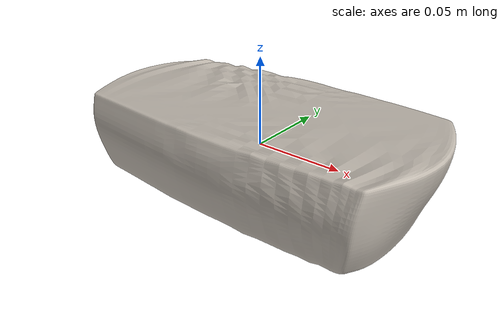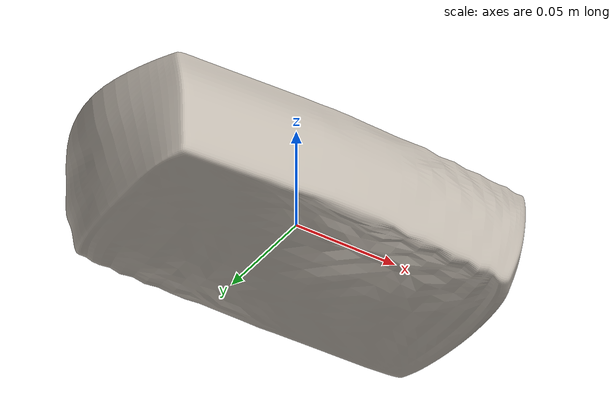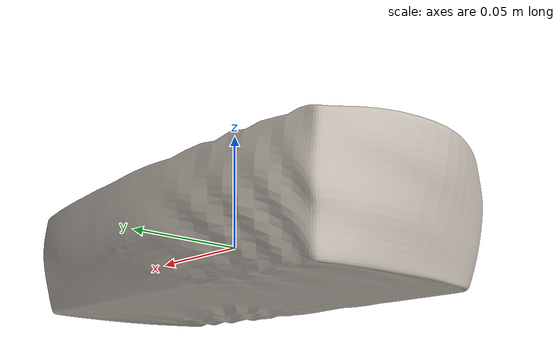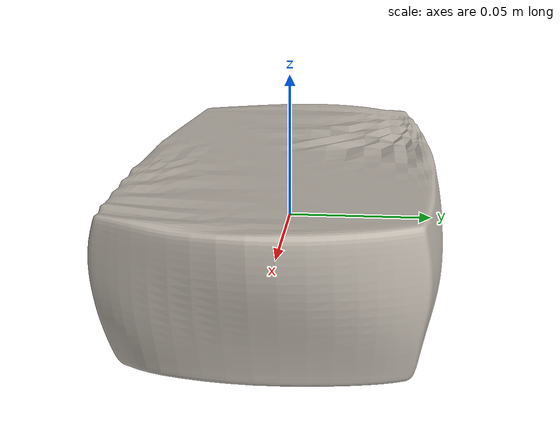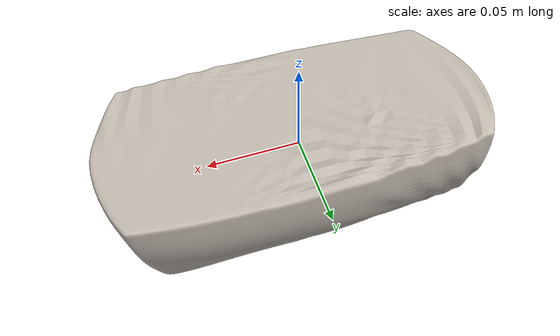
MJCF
<?xml version="1.0" ?>
<mujoco model="cold_cutting_2">
	<compiler meshdir="cold_cutting_2/meshes" texturedir="cold_cutting_2/textures" angle="radian" autolimits="true" balanceinertia="true" boundmass="0.000001" boundinertia="0.000001"/>
	<default>
		<default class="visual">
			<geom contype="0" conaffinity="0"/>
		</default>
		<default class="collision">
			<geom rgba="1.0 0.0 0.0 0.0"/>
		</default>
	</default>
	<asset>
		<mesh name="ColdCutting2" file="obj/ColdCutting2.obj" scale="1.0 1.0 1.0"/>
		<mesh name="ColdCutting2_001" file="stl/ColdCutting2_001.stl" scale="1.0 1.0 1.0"/>
		<material name="M_ColdCutting2" texture="T_ColdCutting2"/>
		<texture name="T_ColdCutting2" type="2d" file="T_ColdCutting2.png"/>
	</asset>
	<worldbody>
		<body name="cold_cutting_2" pos="0.0 0.0 0.0" quat="1.0 0.0 0.0 0.0">
			<inertial mass="0.8349259495735168" pos="0.00012570281978696585 -0.0003600839409045875 0.0007660798728466034" quat="0.9999943375587463 0.0024071240331977606 -2.632282121339813e-05 0.0023470488376915455" diaginertia="0.0007858055760152638 0.0024277539923787117 0.0029123076237738132"/>
			<geom name="ColdCutting2" type="mesh" pos="0.0 0.0 0.0" quat="1.0 0.0 0.0 0.0" mesh="ColdCutting2" material="M_ColdCutting2" class="visual"/>
			<geom name="ColdCutting2_001" type="mesh" pos="0.0 0.0 0.0" quat="1.0 0.0 0.0 0.0" mesh="ColdCutting2_001" class="collision"/>
		</body>
	</worldbody>
	<equality/>
</mujoco>
